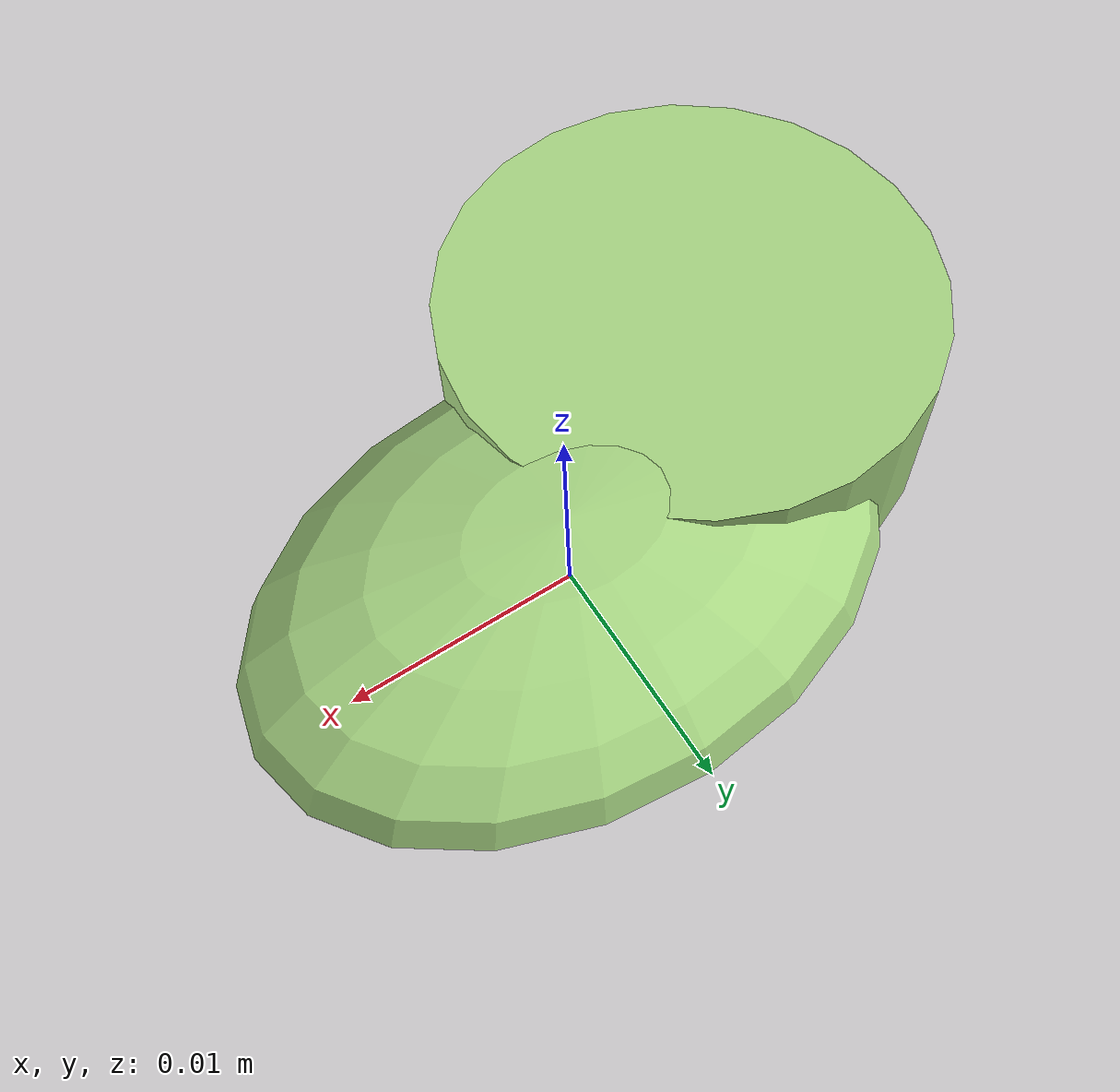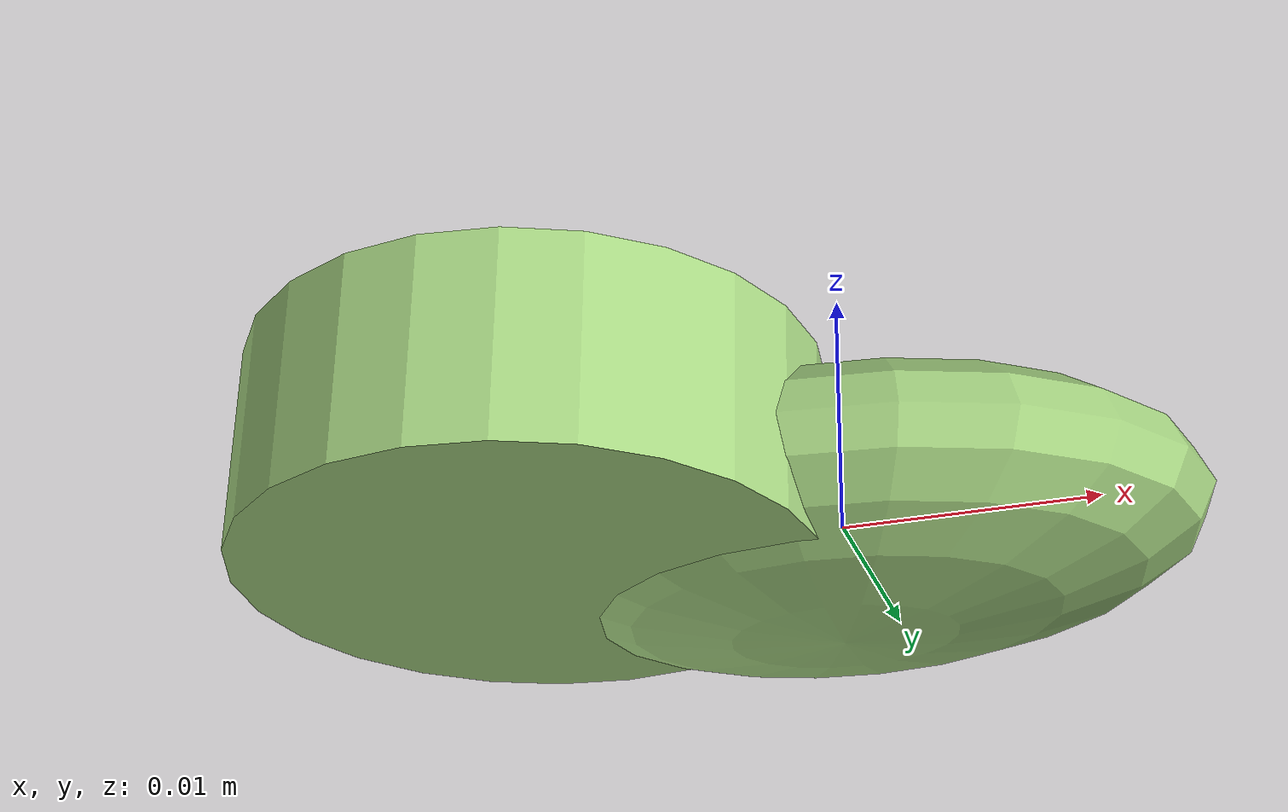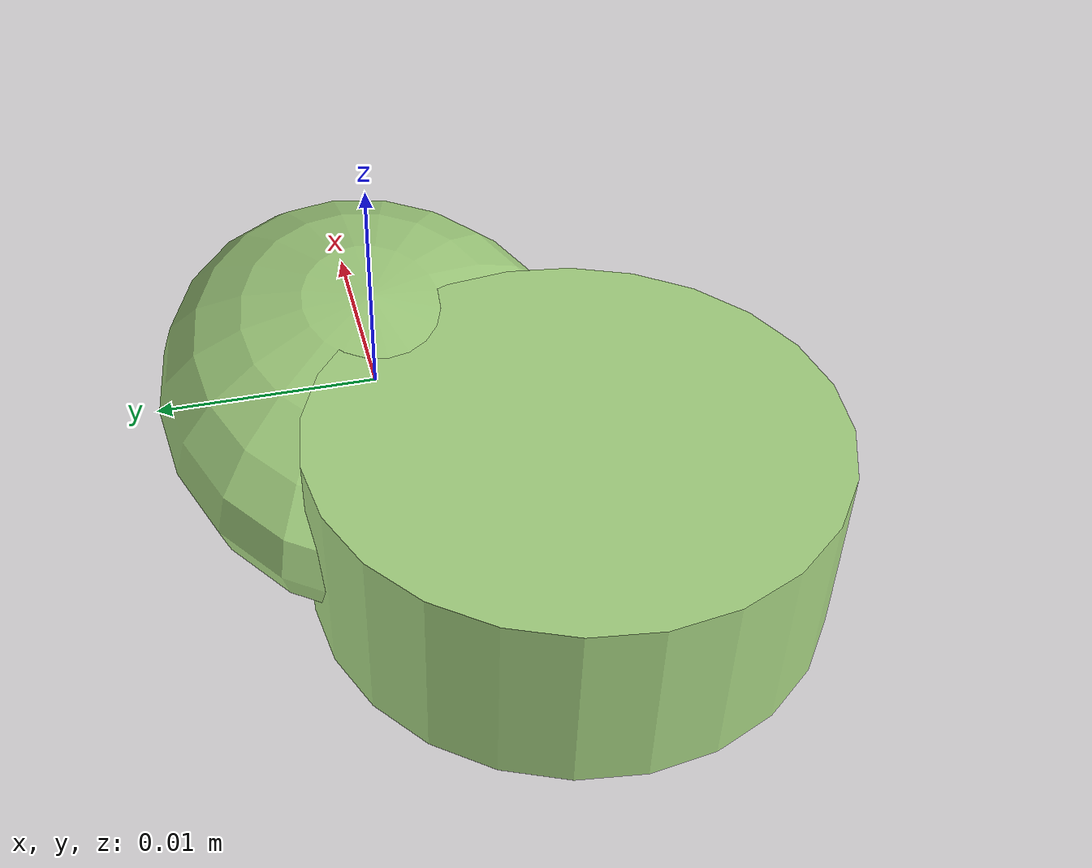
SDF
<?xml version="1.0" ?>
<!-- |    This document was autogenerated by xmacro from data/veggie_template/veggie_base.sdf.xacro  | -->
<!-- |    EDITING THIS FILE BY HAND IS NOT RECOMMENDED                                               | -->
<sdf version="1.8">
	<!-- Parameters -->
	<!-- Base -->
	<!-- Joint 0 -->
	<!-- Link 1 -->
	<!-- Joint 1 -->
	<!-- Link 2 -->
	<!-- Primitives -->
	<!-- All dimensions are half -->
	<!-- Object -->
	<model name="veggie">
		<!-- link0 -->
		<link name="link0">
			<inertial>
				<mass>0.0028082462791329927</mass>
				<inertia>
					<ixx>6.783562707115181e-08</ixx>
					<ixy>0</ixy>
					<ixz>0</ixz>
					<iyy>1.2542134696278916e-07</iyy>
					<iyz>0</iyz>
					<izz>1.6751094444057342e-07</izz>
				</inertia>
			</inertial>
			<visual name="link0_visual">
				<pose>0 0 0 0 0 0</pose>
				<geometry>
					<ellipsoid>
						<radii>0.014155882134413794 0.009892386793693473 0.0047874862574325446</radii>
					</ellipsoid>
				</geometry>
				<material>
					<ambient>0.659 0.839 0.514 1</ambient>
					<diffuse>0.659 0.839 0.514 1</diffuse>
					<specular>0 0 0 0</specular>
					<emissive>0 0 0 1</emissive>
				</material>
			</visual>
			<collision name="link0_collision">
				<pose>0 0 0 0 0 0 </pose>
				<geometry>
					<ellipsoid>
						<radii>0.014155882134413794 0.009892386793693473 0.0047874862574325446</radii>
					</ellipsoid>
				</geometry>
			</collision>
		</link>
		<!-- link1 -->
		<joint name="joint0" type="fixed">
			<pose relative_to="link0">-0.010231706069050007 -0.00642209994073217 0.0005514234968401893 0.0 0.0 0.0</pose>
			<parent>link0</parent>
			<child>link1</child>
		</joint>
		<link name="link1">
			<pose relative_to="joint0">0 0 0 0 0 0</pose>
			<inertial>
				<mass>0.0030348191859243486</mass>
				<inertia>
					<ixx>1.0772607933316108e-07</ixx>
					<ixy>0</ixy>
					<ixz>0</ixz>
					<iyy>1.0772607933316108e-07</iyy>
					<iyz>0</iyz>
					<izz>1.8299938438187189e-07</izz>
				</inertia>
			</inertial>
			<visual name="link1_visual">
				<pose>0 0 0 0 0 0</pose>
				<geometry>
					<cylinder>
						<radius>0.010981796753689944</radius>
						<length>0.008010048197340584</length>
					</cylinder>
				</geometry>
				<material>
					<ambient>0.659 0.839 0.514 1</ambient>
					<diffuse>0.659 0.839 0.514 1</diffuse>
					<specular>0 0 0 0</specular>
					<emissive>0 0 0 1</emissive>
				</material>
			</visual>
			<collision name="link1_collision">
				<pose>0 0 0 0 0 0 </pose>
				<geometry>
					<cylinder>
						<radius>0.010981796753689944</radius>
						<length>0.008010048197340584</length>
					</cylinder>
				</geometry>
			</collision>
		</link>
		<!-- link2 -->
	</model>
</sdf>
